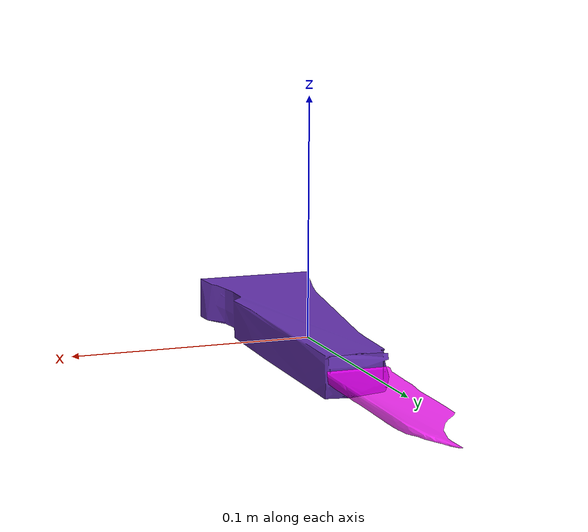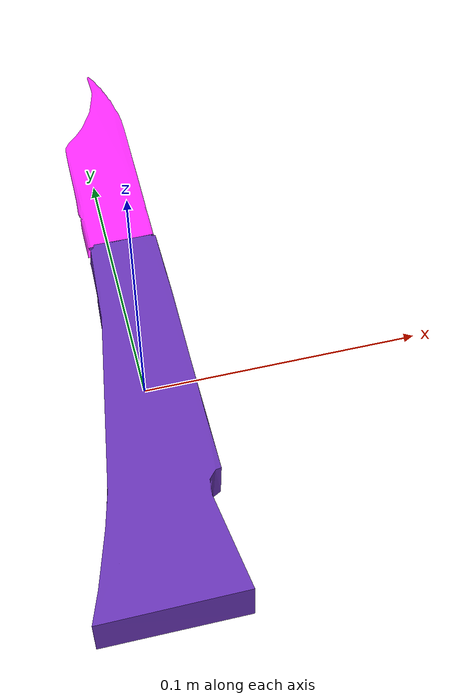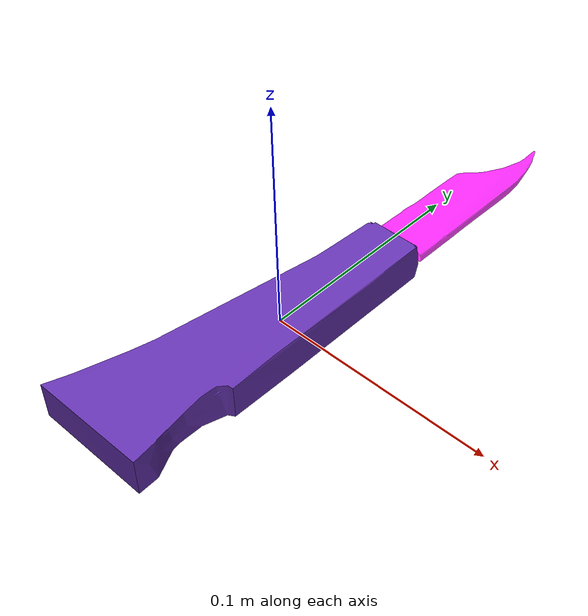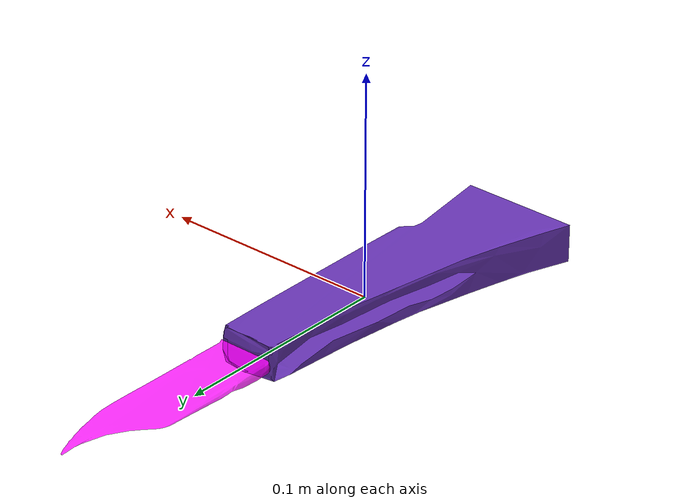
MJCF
<?xml version="1.0" encoding="utf-8"?>
<mujoco model="top_watertight_tiny">

  <asset>

    <mesh file="top_watertight_tiny.obj"/>

    <mesh file="top_watertight_tiny_collision_0.obj"/>

    <mesh file="top_watertight_tiny_collision_1.obj"/>

    <mesh file="top_watertight_tiny_collision_2.obj"/>

    <mesh file="top_watertight_tiny_collision_3.obj"/>

    <mesh file="top_watertight_tiny_collision_4.obj"/>

    <mesh file="top_watertight_tiny_collision_5.obj"/>

    <mesh file="top_watertight_tiny_collision_6.obj"/>

    <mesh file="top_watertight_tiny_collision_7.obj"/>

    <mesh file="top_watertight_tiny_collision_8.obj"/>

    <mesh file="top_watertight_tiny_collision_9.obj"/>

    <mesh file="top_watertight_tiny_collision_10.obj"/>

    <mesh file="top_watertight_tiny_collision_11.obj"/>

    <mesh file="top_watertight_tiny_collision_12.obj"/>

    <mesh file="top_watertight_tiny_collision_13.obj"/>

    <mesh file="top_watertight_tiny_collision_14.obj"/>

    <mesh file="top_watertight_tiny_collision_15.obj"/>

    <mesh file="top_watertight_tiny_collision_16.obj"/>

    <mesh file="top_watertight_tiny_collision_17.obj"/>

    <mesh file="top_watertight_tiny_collision_18.obj"/>

    <mesh file="top_watertight_tiny_collision_19.obj"/>

    <mesh file="top_watertight_tiny_collision_20.obj"/>

    <mesh file="top_watertight_tiny_collision_21.obj"/>

    <mesh file="top_watertight_tiny_collision_22.obj"/>

    <mesh file="top_watertight_tiny_collision_23.obj"/>

    <mesh file="top_watertight_tiny_collision_24.obj"/>

    <mesh file="top_watertight_tiny_collision_25.obj"/>

    <mesh file="top_watertight_tiny_collision_26.obj"/>

    <mesh file="top_watertight_tiny_collision_27.obj"/>

    <mesh file="bottom_watertight_tiny.obj"/>

    <mesh file="bottom_watertight_tiny_collision_0.obj"/>

    <mesh file="bottom_watertight_tiny_collision_1.obj"/>

  </asset>

  <worldbody>

    <body name="top_watertight_tiny">

      <freejoint/>

      <geom mesh="top_watertight_tiny" group="2" type="mesh" rgba="0.4 0.2 0.7 1" contype="0" conaffinity="0" solimp="0.90 0.95 0.001" solref="0.02 1.0" density="100" friction="0.95 0.4 0.3"/>

      <geom mesh="top_watertight_tiny_collision_0" rgba="0.4734565807640716 0.8702738923375006 0.47823666845449875 1" group="3" type="mesh" solimp="0.90 0.95 0.001" solref="0.02 1.0" density="100" friction="0.95 0.4 0.3"/>

      <geom mesh="top_watertight_tiny_collision_1" rgba="0.39266400784701194 0.5106943665965961 0.08789832583455381 1" group="3" type="mesh" solimp="0.90 0.95 0.001" solref="0.02 1.0" density="100" friction="0.95 0.4 0.3"/>

      <geom mesh="top_watertight_tiny_collision_2" rgba="0.3634656976351779 0.35474679293518097 0.9387730509355505 1" group="3" type="mesh" solimp="0.90 0.95 0.001" solref="0.02 1.0" density="100" friction="0.95 0.4 0.3"/>

      <geom mesh="top_watertight_tiny_collision_3" rgba="0.7373904277662351 0.04384566620850616 0.1351736808987506 1" group="3" type="mesh" solimp="0.90 0.95 0.001" solref="0.02 1.0" density="100" friction="0.95 0.4 0.3"/>

      <geom mesh="top_watertight_tiny_collision_4" rgba="0.6551124299431693 0.30316562102483813 0.8180582672011643 1" group="3" type="mesh" solimp="0.90 0.95 0.001" solref="0.02 1.0" density="100" friction="0.95 0.4 0.3"/>

      <geom mesh="top_watertight_tiny_collision_5" rgba="0.34062743474901713 0.9978414405511606 0.25501952266722205 1" group="3" type="mesh" solimp="0.90 0.95 0.001" solref="0.02 1.0" density="100" friction="0.95 0.4 0.3"/>

      <geom mesh="top_watertight_tiny_collision_6" rgba="0.029700112183479677 0.33357139842247086 0.9848244007880955 1" group="3" type="mesh" solimp="0.90 0.95 0.001" solref="0.02 1.0" density="100" friction="0.95 0.4 0.3"/>

      <geom mesh="top_watertight_tiny_collision_7" rgba="0.5638821972721842 0.4163670241641223 0.9225760421149211 1" group="3" type="mesh" solimp="0.90 0.95 0.001" solref="0.02 1.0" density="100" friction="0.95 0.4 0.3"/>

      <geom mesh="top_watertight_tiny_collision_8" rgba="0.5701337491441535 0.03205112078554018 0.8967799662740578 1" group="3" type="mesh" solimp="0.90 0.95 0.001" solref="0.02 1.0" density="100" friction="0.95 0.4 0.3"/>

      <geom mesh="top_watertight_tiny_collision_9" rgba="0.1943242810035517 0.2519889923727733 0.9283018213001382 1" group="3" type="mesh" solimp="0.90 0.95 0.001" solref="0.02 1.0" density="100" friction="0.95 0.4 0.3"/>

      <geom mesh="top_watertight_tiny_collision_10" rgba="0.4965605128996169 0.606215591610244 0.3272875147430604 1" group="3" type="mesh" solimp="0.90 0.95 0.001" solref="0.02 1.0" density="100" friction="0.95 0.4 0.3"/>

      <geom mesh="top_watertight_tiny_collision_11" rgba="0.7213148512945701 0.9515240469122224 0.620364080927421 1" group="3" type="mesh" solimp="0.90 0.95 0.001" solref="0.02 1.0" density="100" friction="0.95 0.4 0.3"/>

      <geom mesh="top_watertight_tiny_collision_12" rgba="0.43771219024890884 0.24468538379720617 0.04205185226337149 1" group="3" type="mesh" solimp="0.90 0.95 0.001" solref="0.02 1.0" density="100" friction="0.95 0.4 0.3"/>

      <geom mesh="top_watertight_tiny_collision_13" rgba="0.29734840005269514 0.6802771536631097 0.7498162692052828 1" group="3" type="mesh" solimp="0.90 0.95 0.001" solref="0.02 1.0" density="100" friction="0.95 0.4 0.3"/>

      <geom mesh="top_watertight_tiny_collision_14" rgba="0.19083077414343985 0.7941710121473448 0.8479583299466463 1" group="3" type="mesh" solimp="0.90 0.95 0.001" solref="0.02 1.0" density="100" friction="0.95 0.4 0.3"/>

      <geom mesh="top_watertight_tiny_collision_15" rgba="0.5251270027494404 0.76327361466683 0.3411034675296033 1" group="3" type="mesh" solimp="0.90 0.95 0.001" solref="0.02 1.0" density="100" friction="0.95 0.4 0.3"/>

      <geom mesh="top_watertight_tiny_collision_16" rgba="0.16548231231439903 0.8628849834458142 0.5894669414824171 1" group="3" type="mesh" solimp="0.90 0.95 0.001" solref="0.02 1.0" density="100" friction="0.95 0.4 0.3"/>

      <geom mesh="top_watertight_tiny_collision_17" rgba="0.1532173612429394 0.650775554262222 0.48664510726172683 1" group="3" type="mesh" solimp="0.90 0.95 0.001" solref="0.02 1.0" density="100" friction="0.95 0.4 0.3"/>

      <geom mesh="top_watertight_tiny_collision_18" rgba="0.4275624347382293 0.8719166559973056 0.2526830399526513 1" group="3" type="mesh" solimp="0.90 0.95 0.001" solref="0.02 1.0" density="100" friction="0.95 0.4 0.3"/>

      <geom mesh="top_watertight_tiny_collision_19" rgba="0.2617876923229039 0.04755360530544239 0.7209979664837864 1" group="3" type="mesh" solimp="0.90 0.95 0.001" solref="0.02 1.0" density="100" friction="0.95 0.4 0.3"/>

      <geom mesh="top_watertight_tiny_collision_20" rgba="0.2876240346608492 0.20471797149313786 0.41396419819601005 1" group="3" type="mesh" solimp="0.90 0.95 0.001" solref="0.02 1.0" density="100" friction="0.95 0.4 0.3"/>

      <geom mesh="top_watertight_tiny_collision_21" rgba="0.2713292920085476 0.5876649572910068 0.9342994780049201 1" group="3" type="mesh" solimp="0.90 0.95 0.001" solref="0.02 1.0" density="100" friction="0.95 0.4 0.3"/>

      <geom mesh="top_watertight_tiny_collision_22" rgba="0.5893531929347404 0.6333302928903144 0.5470093485025646 1" group="3" type="mesh" solimp="0.90 0.95 0.001" solref="0.02 1.0" density="100" friction="0.95 0.4 0.3"/>

      <geom mesh="top_watertight_tiny_collision_23" rgba="0.034151611857194286 0.3091017177048394 0.28525139436948266 1" group="3" type="mesh" solimp="0.90 0.95 0.001" solref="0.02 1.0" density="100" friction="0.95 0.4 0.3"/>

      <geom mesh="top_watertight_tiny_collision_24" rgba="0.8626467682284475 0.6016607846779358 0.6468403510076365 1" group="3" type="mesh" solimp="0.90 0.95 0.001" solref="0.02 1.0" density="100" friction="0.95 0.4 0.3"/>

      <geom mesh="top_watertight_tiny_collision_25" rgba="0.6218720185961474 0.8951573936017366 0.7704401743524162 1" group="3" type="mesh" solimp="0.90 0.95 0.001" solref="0.02 1.0" density="100" friction="0.95 0.4 0.3"/>

      <geom mesh="top_watertight_tiny_collision_26" rgba="0.7484318175621876 0.3433307432424676 0.4686404004068858 1" group="3" type="mesh" solimp="0.90 0.95 0.001" solref="0.02 1.0" density="100" friction="0.95 0.4 0.3"/>

      <geom mesh="top_watertight_tiny_collision_27" rgba="0.3910411889269586 0.8514361032669344 0.17598965585352866 1" group="3" type="mesh" solimp="0.90 0.95 0.001" solref="0.02 1.0" density="100" friction="0.95 0.4 0.3"/>

      <body name="bottom_watertight_tiny">

        <geom mesh="bottom_watertight_tiny" group="2" type="mesh" rgba="1 0 1 0.8" contype="0" conaffinity="0" solimp="0.90 0.95 0.001" solref="0.02 1.0" density="100" friction="0.95 0.4 0.3"/>

        <geom mesh="bottom_watertight_tiny_collision_0" rgba="0.05714790637993239 0.04104642499794142 0.7704133386798093 1" group="3" type="mesh" solimp="0.90 0.95 0.001" solref="0.02 1.0" density="100" friction="0.95 0.4 0.3"/>

        <geom mesh="bottom_watertight_tiny_collision_1" rgba="0.35641175596807917 0.7225773080263868 0.8113147606842466 1" group="3" type="mesh" solimp="0.90 0.95 0.001" solref="0.02 1.0" density="100" friction="0.95 0.4 0.3"/>

        <site name="bottom_watertight_tiny_touch_site" pos="0 0 0" size="0.2" rgba="1 0 0 0." type="sphere"/>
      </body>

      <site name="top_watertight_tiny_touch_site" pos="0 0 0" size="0.2" rgba="1 0 0 0." type="sphere"/>
    </body>

  </worldbody>

  <sensor>
    <touch name="top_watertight_tiny_touch" site="top_watertight_tiny_touch_site"/>
    <touch name="bottom_watertight_tiny_touch" site="bottom_watertight_tiny_touch_site"/>
  </sensor>
</mujoco>
